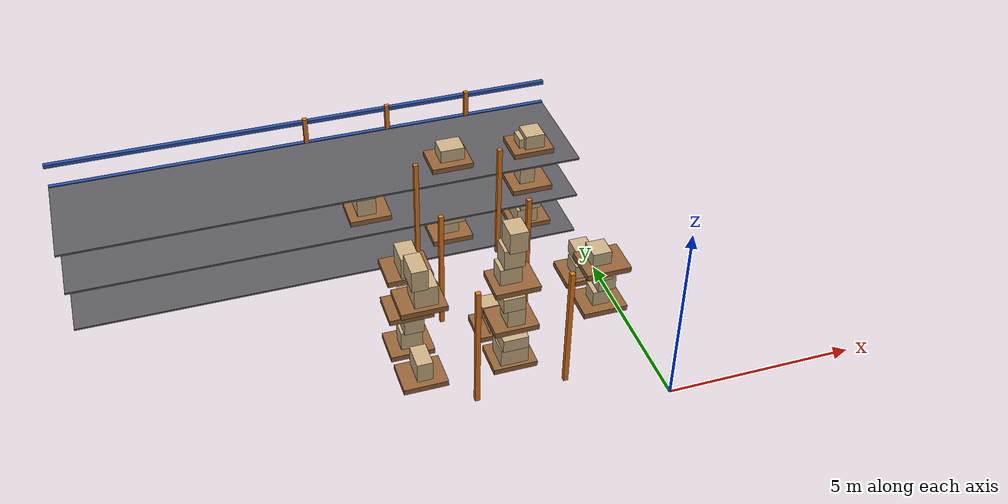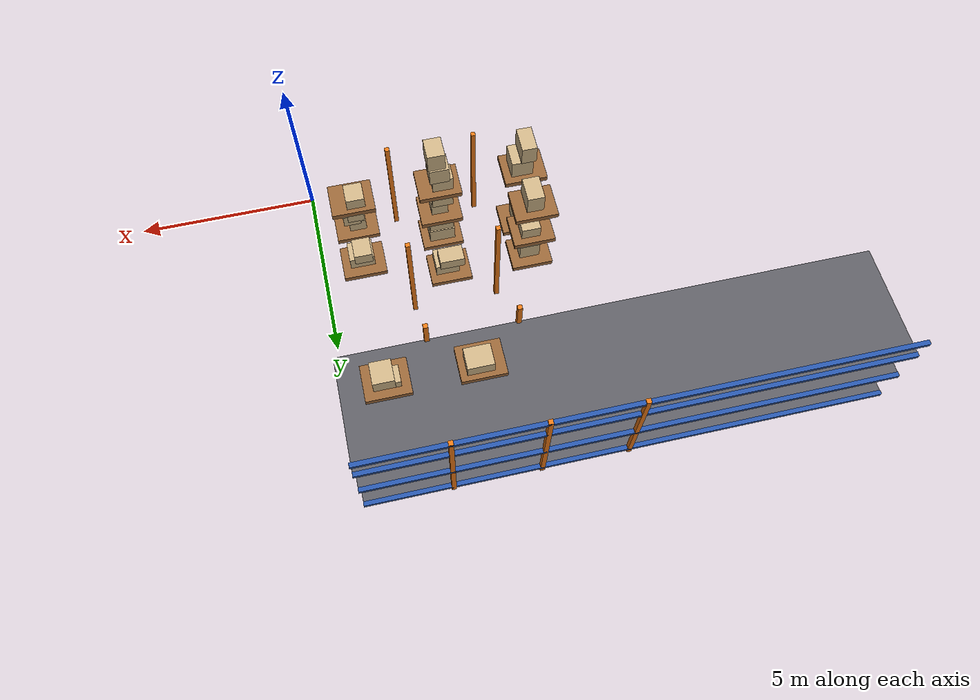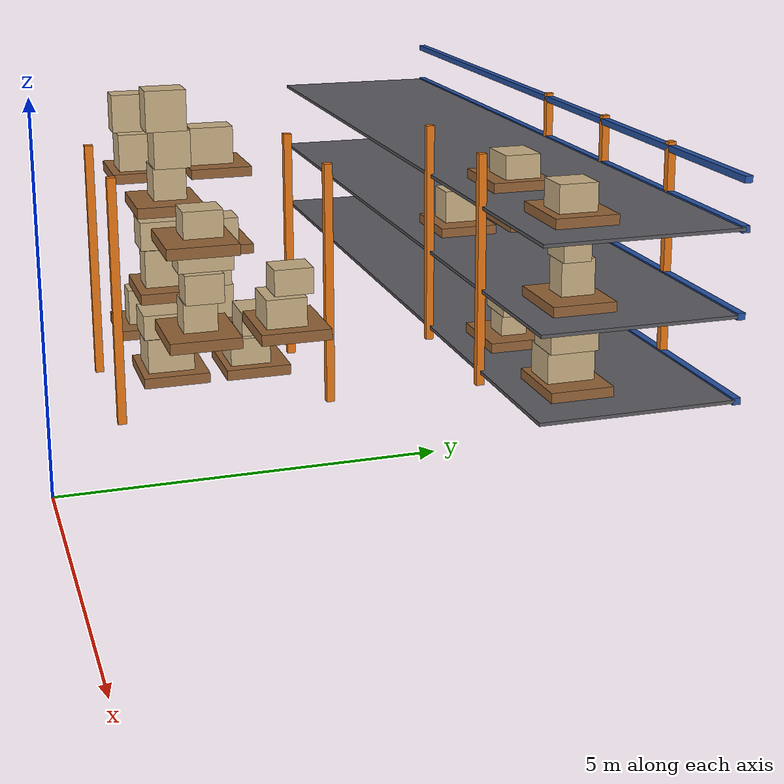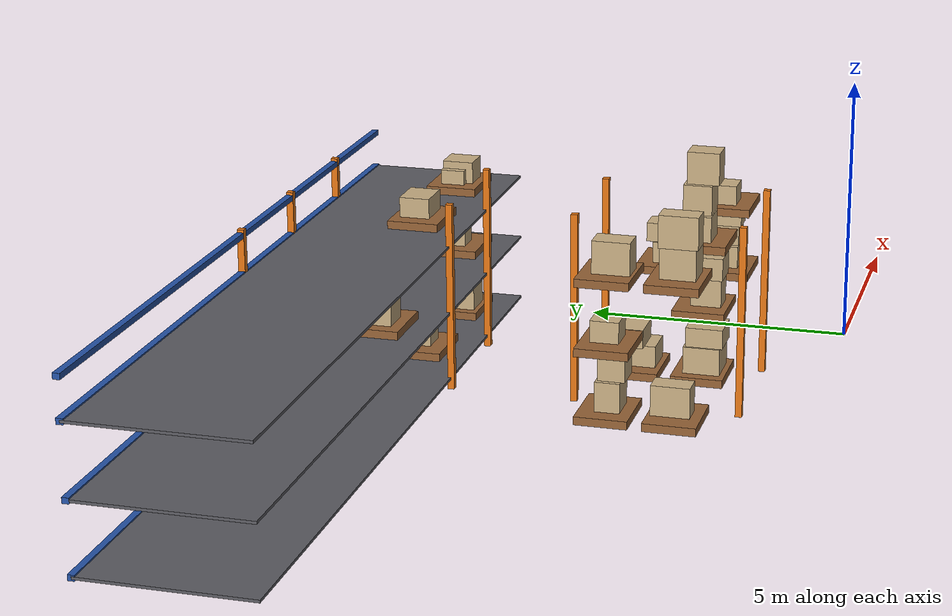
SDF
<sdf version="1.7">
 <world name="default">
  <model name="warehouse_racks">
   <static>1</static>
   <link name="r20_u4_0">
    <pose>-4.66667 1.2 1.75 0 0 0</pose>
    <collision name="c"><geometry><box><size>0.12 0.12 3.5</size></box></geometry></collision>
    <visual name="v">
     <geometry><box><size>0.12 0.12 3.5</size></box></geometry>
     <material>
      <ambient>0.910 0.471 0.086 1</ambient>
      <diffuse>0.910 0.471 0.086 1</diffuse>
      <specular>0.1 0.1 0.1 1</specular>
     </material>
    </visual>
   </link>
   <link name="r20_u4_1">
    <pose>-4.66667 4.2 1.75 0 0 0</pose>
    <collision name="c"><geometry><box><size>0.12 0.12 3.5</size></box></geometry></collision>
    <visual name="v">
     <geometry><box><size>0.12 0.12 3.5</size></box></geometry>
     <material>
      <ambient>0.910 0.471 0.086 1</ambient>
      <diffuse>0.910 0.471 0.086 1</diffuse>
      <specular>0.1 0.1 0.1 1</specular>
     </material>
    </visual>
   </link>
   <link name="r20_u5_0">
    <pose>-2.33333 1.2 1.75 0 0 0</pose>
    <collision name="c"><geometry><box><size>0.12 0.12 3.5</size></box></geometry></collision>
    <visual name="v">
     <geometry><box><size>0.12 0.12 3.5</size></box></geometry>
     <material>
      <ambient>0.910 0.471 0.086 1</ambient>
      <diffuse>0.910 0.471 0.086 1</diffuse>
      <specular>0.1 0.1 0.1 1</specular>
     </material>
    </visual>
   </link>
   <link name="r20_u5_1">
    <pose>-2.33333 4.2 1.75 0 0 0</pose>
    <collision name="c"><geometry><box><size>0.12 0.12 3.5</size></box></geometry></collision>
    <visual name="v">
     <geometry><box><size>0.12 0.12 3.5</size></box></geometry>
     <material>
      <ambient>0.910 0.471 0.086 1</ambient>
      <diffuse>0.910 0.471 0.086 1</diffuse>
      <specular>0.1 0.1 0.1 1</specular>
     </material>
    </visual>
   </link>
   <link name="r30_u3_1">
    <pose>-7 9.5 1.75 0 0 0</pose>
    <collision name="c"><geometry><box><size>0.12 0.12 3.5</size></box></geometry></collision>
    <visual name="v">
     <geometry><box><size>0.12 0.12 3.5</size></box></geometry>
     <material>
      <ambient>0.910 0.471 0.086 1</ambient>
      <diffuse>0.910 0.471 0.086 1</diffuse>
      <specular>0.1 0.1 0.1 1</specular>
     </material>
    </visual>
   </link>
   <link name="r30_u4_0">
    <pose>-4.66667 6.5 1.75 0 0 0</pose>
    <collision name="c"><geometry><box><size>0.12 0.12 3.5</size></box></geometry></collision>
    <visual name="v">
     <geometry><box><size>0.12 0.12 3.5</size></box></geometry>
     <material>
      <ambient>0.910 0.471 0.086 1</ambient>
      <diffuse>0.910 0.471 0.086 1</diffuse>
      <specular>0.1 0.1 0.1 1</specular>
     </material>
    </visual>
   </link>
   <link name="r30_u4_1">
    <pose>-4.66667 9.5 1.75 0 0 0</pose>
    <collision name="c"><geometry><box><size>0.12 0.12 3.5</size></box></geometry></collision>
    <visual name="v">
     <geometry><box><size>0.12 0.12 3.5</size></box></geometry>
     <material>
      <ambient>0.910 0.471 0.086 1</ambient>
      <diffuse>0.910 0.471 0.086 1</diffuse>
      <specular>0.1 0.1 0.1 1</specular>
     </material>
    </visual>
   </link>
   <link name="r30_u5_0">
    <pose>-2.33333 6.5 1.75 0 0 0</pose>
    <collision name="c"><geometry><box><size>0.12 0.12 3.5</size></box></geometry></collision>
    <visual name="v">
     <geometry><box><size>0.12 0.12 3.5</size></box></geometry>
     <material>
      <ambient>0.910 0.471 0.086 1</ambient>
      <diffuse>0.910 0.471 0.086 1</diffuse>
      <specular>0.1 0.1 0.1 1</specular>
     </material>
    </visual>
   </link>
   <link name="r30_u5_1">
    <pose>-2.33333 9.5 1.75 0 0 0</pose>
    <collision name="c"><geometry><box><size>0.12 0.12 3.5</size></box></geometry></collision>
    <visual name="v">
     <geometry><box><size>0.12 0.12 3.5</size></box></geometry>
     <material>
      <ambient>0.910 0.471 0.086 1</ambient>
      <diffuse>0.910 0.471 0.086 1</diffuse>
      <specular>0.1 0.1 0.1 1</specular>
     </material>
    </visual>
   </link>
   <link name="r30_b0_1">
    <pose>-7 9.5 0.2 0 0 0</pose>
    <collision name="c"><geometry><box><size>14 0.12 0.1</size></box></geometry></collision>
    <visual name="v">
     <geometry><box><size>14 0.12 0.1</size></box></geometry>
     <material>
      <ambient>0.149 0.329 0.659 1</ambient>
      <diffuse>0.149 0.329 0.659 1</diffuse>
      <specular>0.1 0.1 0.1 1</specular>
     </material>
    </visual>
   </link>
   <link name="r30_b1_1">
    <pose>-7 9.5 1.45 0 0 0</pose>
    <collision name="c"><geometry><box><size>14 0.12 0.1</size></box></geometry></collision>
    <visual name="v">
     <geometry><box><size>14 0.12 0.1</size></box></geometry>
     <material>
      <ambient>0.149 0.329 0.659 1</ambient>
      <diffuse>0.149 0.329 0.659 1</diffuse>
      <specular>0.1 0.1 0.1 1</specular>
     </material>
    </visual>
   </link>
   <link name="r30_b2_1">
    <pose>-7 9.5 2.7 0 0 0</pose>
    <collision name="c"><geometry><box><size>14 0.12 0.1</size></box></geometry></collision>
    <visual name="v">
     <geometry><box><size>14 0.12 0.1</size></box></geometry>
     <material>
      <ambient>0.149 0.329 0.659 1</ambient>
      <diffuse>0.149 0.329 0.659 1</diffuse>
      <specular>0.1 0.1 0.1 1</specular>
     </material>
    </visual>
   </link>
   <link name="r30_b3_1">
    <pose>-7 9.5 3.4 0 0 0</pose>
    <collision name="c"><geometry><box><size>14 0.12 0.1</size></box></geometry></collision>
    <visual name="v">
     <geometry><box><size>14 0.12 0.1</size></box></geometry>
     <material>
      <ambient>0.149 0.329 0.659 1</ambient>
      <diffuse>0.149 0.329 0.659 1</diffuse>
      <specular>0.1 0.1 0.1 1</specular>
     </material>
    </visual>
   </link>
   <link name="r30_d0">
    <pose>-7 8 0.2 0 0 0</pose>
    <collision name="c"><geometry><box><size>14 3 0.05</size></box></geometry></collision>
    <visual name="v">
     <geometry><box><size>14 3 0.05</size></box></geometry>
     <material>
      <ambient>0.361 0.361 0.384 1</ambient>
      <diffuse>0.361 0.361 0.384 1</diffuse>
      <specular>0.1 0.1 0.1 1</specular>
     </material>
    </visual>
   </link>
   <link name="r30_d1">
    <pose>-7 8 1.45 0 0 0</pose>
    <collision name="c"><geometry><box><size>14 3 0.05</size></box></geometry></collision>
    <visual name="v">
     <geometry><box><size>14 3 0.05</size></box></geometry>
     <material>
      <ambient>0.361 0.361 0.384 1</ambient>
      <diffuse>0.361 0.361 0.384 1</diffuse>
      <specular>0.1 0.1 0.1 1</specular>
     </material>
    </visual>
   </link>
   <link name="r30_d2">
    <pose>-7 8 2.7 0 0 0</pose>
    <collision name="c"><geometry><box><size>14 3 0.05</size></box></geometry></collision>
    <visual name="v">
     <geometry><box><size>14 3 0.05</size></box></geometry>
     <material>
      <ambient>0.361 0.361 0.384 1</ambient>
      <diffuse>0.361 0.361 0.384 1</diffuse>
      <specular>0.1 0.1 0.1 1</specular>
     </material>
    </visual>
   </link>
  </model>
  <model name="warehouse_loads">
   <static>1</static>
   <link name="r20L0_3_0_p">
    <pose>-5.83333 2.1 0.325 0 0 0</pose>
    <collision name="c"><geometry><box><size>1.15 0.95 0.15</size></box></geometry></collision>
    <visual name="v">
     <geometry><box><size>1.15 0.95 0.15</size></box></geometry>
     <material>
      <ambient>0.588 0.392 0.216 1</ambient>
      <diffuse>0.588 0.392 0.216 1</diffuse>
      <specular>0.1 0.1 0.1 1</specular>
     </material>
    </visual>
   </link>
   <link name="r20L0_3_0_c0">
    <pose>-5.8065 2.16501 0.676502 0 0 0</pose>
    <collision name="c"><geometry><box><size>0.412049 0.696701 0.553005</size></box></geometry></collision>
    <visual name="v">
     <geometry><box><size>0.412049 0.696701 0.553005</size></box></geometry>
     <material>
      <ambient>0.792 0.690 0.518 1</ambient>
      <diffuse>0.792 0.690 0.518 1</diffuse>
      <specular>0.1 0.1 0.1 1</specular>
     </material>
    </visual>
   </link>
   <link name="r20L0_3_1_p">
    <pose>-5.83333 3.3 0.325 0 0 0</pose>
    <collision name="c"><geometry><box><size>1.15 0.95 0.15</size></box></geometry></collision>
    <visual name="v">
     <geometry><box><size>1.15 0.95 0.15</size></box></geometry>
     <material>
      <ambient>0.588 0.392 0.216 1</ambient>
      <diffuse>0.588 0.392 0.216 1</diffuse>
      <specular>0.1 0.1 0.1 1</specular>
     </material>
    </visual>
   </link>
   <link name="r20L0_3_1_c0">
    <pose>-5.80407 3.25889 0.673996 0 0 0</pose>
    <collision name="c"><geometry><box><size>0.56699 0.446429 0.547992</size></box></geometry></collision>
    <visual name="v">
     <geometry><box><size>0.56699 0.446429 0.547992</size></box></geometry>
     <material>
      <ambient>0.792 0.690 0.518 1</ambient>
      <diffuse>0.792 0.690 0.518 1</diffuse>
      <specular>0.1 0.1 0.1 1</specular>
     </material>
    </visual>
   </link>
   <link name="r20L0_3_1_c1">
    <pose>-5.74731 3.20968 1.16685 0 0 0</pose>
    <collision name="c"><geometry><box><size>0.517781 0.491406 0.437725</size></box></geometry></collision>
    <visual name="v">
     <geometry><box><size>0.517781 0.491406 0.437725</size></box></geometry>
     <material>
      <ambient>0.792 0.690 0.518 1</ambient>
      <diffuse>0.792 0.690 0.518 1</diffuse>
      <specular>0.1 0.1 0.1 1</specular>
     </material>
    </visual>
   </link>
   <link name="r20L0_4_0_p">
    <pose>-3.5 2.1 0.325 0 0 0</pose>
    <collision name="c"><geometry><box><size>1.15 0.95 0.15</size></box></geometry></collision>
    <visual name="v">
     <geometry><box><size>1.15 0.95 0.15</size></box></geometry>
     <material>
      <ambient>0.588 0.392 0.216 1</ambient>
      <diffuse>0.588 0.392 0.216 1</diffuse>
      <specular>0.1 0.1 0.1 1</specular>
     </material>
    </visual>
   </link>
   <link name="r20L0_4_0_c0">
    <pose>-3.50478 2.05753 0.650251 0 0 0</pose>
    <collision name="c"><geometry><box><size>0.718617 0.669233 0.500502</size></box></geometry></collision>
    <visual name="v">
     <geometry><box><size>0.718617 0.669233 0.500502</size></box></geometry>
     <material>
      <ambient>0.792 0.690 0.518 1</ambient>
      <diffuse>0.792 0.690 0.518 1</diffuse>
      <specular>0.1 0.1 0.1 1</specular>
     </material>
    </visual>
   </link>
   <link name="r20L0_4_0_c1">
    <pose>-3.49628 2.01966 1.07941 0 0 0</pose>
    <collision name="c"><geometry><box><size>0.660979 0.67617 0.357812</size></box></geometry></collision>
    <visual name="v">
     <geometry><box><size>0.660979 0.67617 0.357812</size></box></geometry>
     <material>
      <ambient>0.792 0.690 0.518 1</ambient>
      <diffuse>0.792 0.690 0.518 1</diffuse>
      <specular>0.1 0.1 0.1 1</specular>
     </material>
    </visual>
   </link>
   <link name="r20L0_4_1_p">
    <pose>-3.5 3.3 0.325 0 0 0</pose>
    <collision name="c"><geometry><box><size>1.15 0.95 0.15</size></box></geometry></collision>
    <visual name="v">
     <geometry><box><size>1.15 0.95 0.15</size></box></geometry>
     <material>
      <ambient>0.588 0.392 0.216 1</ambient>
      <diffuse>0.588 0.392 0.216 1</diffuse>
      <specular>0.1 0.1 0.1 1</specular>
     </material>
    </visual>
   </link>
   <link name="r20L0_4_1_c0">
    <pose>-3.42755 3.21818 0.602072 0 0 0</pose>
    <collision name="c"><geometry><box><size>0.646631 0.588258 0.404144</size></box></geometry></collision>
    <visual name="v">
     <geometry><box><size>0.646631 0.588258 0.404144</size></box></geometry>
     <material>
      <ambient>0.792 0.690 0.518 1</ambient>
      <diffuse>0.792 0.690 0.518 1</diffuse>
      <specular>0.1 0.1 0.1 1</specular>
     </material>
    </visual>
   </link>
   <link name="r20L0_4_1_c1">
    <pose>-3.55959 3.35244 0.979306 0 0 0</pose>
    <collision name="c"><geometry><box><size>0.686934 0.45963 0.350325</size></box></geometry></collision>
    <visual name="v">
     <geometry><box><size>0.686934 0.45963 0.350325</size></box></geometry>
     <material>
      <ambient>0.792 0.690 0.518 1</ambient>
      <diffuse>0.792 0.690 0.518 1</diffuse>
      <specular>0.1 0.1 0.1 1</specular>
     </material>
    </visual>
   </link>
   <link name="r20L1_3_1_p">
    <pose>-5.83333 3.3 1.575 0 0 0</pose>
    <collision name="c"><geometry><box><size>1.15 0.95 0.15</size></box></geometry></collision>
    <visual name="v">
     <geometry><box><size>1.15 0.95 0.15</size></box></geometry>
     <material>
      <ambient>0.588 0.392 0.216 1</ambient>
      <diffuse>0.588 0.392 0.216 1</diffuse>
      <specular>0.1 0.1 0.1 1</specular>
     </material>
    </visual>
   </link>
   <link name="r20L1_3_1_c0">
    <pose>-5.76471 3.33242 1.84442 0 0 0</pose>
    <collision name="c"><geometry><box><size>0.52197 0.514331 0.388832</size></box></geometry></collision>
    <visual name="v">
     <geometry><box><size>0.52197 0.514331 0.388832</size></box></geometry>
     <material>
      <ambient>0.792 0.690 0.518 1</ambient>
      <diffuse>0.792 0.690 0.518 1</diffuse>
      <specular>0.1 0.1 0.1 1</specular>
     </material>
    </visual>
   </link>
   <link name="r20L1_4_0_p">
    <pose>-3.5 2.1 1.575 0 0 0</pose>
    <collision name="c"><geometry><box><size>1.15 0.95 0.15</size></box></geometry></collision>
    <visual name="v">
     <geometry><box><size>1.15 0.95 0.15</size></box></geometry>
     <material>
      <ambient>0.588 0.392 0.216 1</ambient>
      <diffuse>0.588 0.392 0.216 1</diffuse>
      <specular>0.1 0.1 0.1 1</specular>
     </material>
    </visual>
   </link>
   <link name="r20L1_4_0_c0">
    <pose>-3.48417 2.02521 1.92168 0 0 0</pose>
    <collision name="c"><geometry><box><size>0.459343 0.553579 0.543359</size></box></geometry></collision>
    <visual name="v">
     <geometry><box><size>0.459343 0.553579 0.543359</size></box></geometry>
     <material>
      <ambient>0.792 0.690 0.518 1</ambient>
      <diffuse>0.792 0.690 0.518 1</diffuse>
      <specular>0.1 0.1 0.1 1</specular>
     </material>
    </visual>
   </link>
   <link name="r20L1_4_0_c1">
    <pose>-3.56169 2.0603 2.3981 0 0 0</pose>
    <collision name="c"><geometry><box><size>0.561706 0.709794 0.409485</size></box></geometry></collision>
    <visual name="v">
     <geometry><box><size>0.561706 0.709794 0.409485</size></box></geometry>
     <material>
      <ambient>0.792 0.690 0.518 1</ambient>
      <diffuse>0.792 0.690 0.518 1</diffuse>
      <specular>0.1 0.1 0.1 1</specular>
     </material>
    </visual>
   </link>
   <link name="r20L1_5_0_p">
    <pose>-1.16667 2.1 1.575 0 0 0</pose>
    <collision name="c"><geometry><box><size>1.15 0.95 0.15</size></box></geometry></collision>
    <visual name="v">
     <geometry><box><size>1.15 0.95 0.15</size></box></geometry>
     <material>
      <ambient>0.588 0.392 0.216 1</ambient>
      <diffuse>0.588 0.392 0.216 1</diffuse>
      <specular>0.1 0.1 0.1 1</specular>
     </material>
    </visual>
   </link>
   <link name="r20L1_5_0_c0">
    <pose>-1.20135 2.10444 1.85595 0 0 0</pose>
    <collision name="c"><geometry><box><size>0.454108 0.454595 0.411895</size></box></geometry></collision>
    <visual name="v">
     <geometry><box><size>0.454108 0.454595 0.411895</size></box></geometry>
     <material>
      <ambient>0.792 0.690 0.518 1</ambient>
      <diffuse>0.792 0.690 0.518 1</diffuse>
      <specular>0.1 0.1 0.1 1</specular>
     </material>
    </visual>
   </link>
   <link name="r20L1_5_0_c1">
    <pose>-1.07164 2.14575 2.26055 0 0 0</pose>
    <collision name="c"><geometry><box><size>0.456324 0.514826 0.397318</size></box></geometry></collision>
    <visual name="v">
     <geometry><box><size>0.456324 0.514826 0.397318</size></box></geometry>
     <material>
      <ambient>0.792 0.690 0.518 1</ambient>
      <diffuse>0.792 0.690 0.518 1</diffuse>
      <specular>0.1 0.1 0.1 1</specular>
     </material>
    </visual>
   </link>
   <link name="r20L1_5_0_c2">
    <pose>-1.18982 2.19677 2.64692 0 0 0</pose>
    <collision name="c"><geometry><box><size>0.435632 0.736835 0.375409</size></box></geometry></collision>
    <visual name="v">
     <geometry><box><size>0.435632 0.736835 0.375409</size></box></geometry>
     <material>
      <ambient>0.792 0.690 0.518 1</ambient>
      <diffuse>0.792 0.690 0.518 1</diffuse>
      <specular>0.1 0.1 0.1 1</specular>
     </material>
    </visual>
   </link>
   <link name="r20L1_5_1_p">
    <pose>-1.16667 3.3 1.575 0 0 0</pose>
    <collision name="c"><geometry><box><size>1.15 0.95 0.15</size></box></geometry></collision>
    <visual name="v">
     <geometry><box><size>1.15 0.95 0.15</size></box></geometry>
     <material>
      <ambient>0.588 0.392 0.216 1</ambient>
      <diffuse>0.588 0.392 0.216 1</diffuse>
      <specular>0.1 0.1 0.1 1</specular>
     </material>
    </visual>
   </link>
   <link name="r20L1_5_1_c0">
    <pose>-1.13907 3.22137 1.84952 0 0 0</pose>
    <collision name="c"><geometry><box><size>0.656652 0.552223 0.399048</size></box></geometry></collision>
    <visual name="v">
     <geometry><box><size>0.656652 0.552223 0.399048</size></box></geometry>
     <material>
      <ambient>0.792 0.690 0.518 1</ambient>
      <diffuse>0.792 0.690 0.518 1</diffuse>
      <specular>0.1 0.1 0.1 1</specular>
     </material>
    </visual>
   </link>
   <link name="r20L1_5_1_c1">
    <pose>-1.18686 3.3582 2.22829 0 0 0</pose>
    <collision name="c"><geometry><box><size>0.472255 0.535919 0.358483</size></box></geometry></collision>
    <visual name="v">
     <geometry><box><size>0.472255 0.535919 0.358483</size></box></geometry>
     <material>
      <ambient>0.792 0.690 0.518 1</ambient>
      <diffuse>0.792 0.690 0.518 1</diffuse>
      <specular>0.1 0.1 0.1 1</specular>
     </material>
    </visual>
   </link>
   <link name="r20L2_3_0_p">
    <pose>-5.83333 2.1 2.825 0 0 0</pose>
    <collision name="c"><geometry><box><size>1.15 0.95 0.15</size></box></geometry></collision>
    <visual name="v">
     <geometry><box><size>1.15 0.95 0.15</size></box></geometry>
     <material>
      <ambient>0.588 0.392 0.216 1</ambient>
      <diffuse>0.588 0.392 0.216 1</diffuse>
      <specular>0.1 0.1 0.1 1</specular>
     </material>
    </visual>
   </link>
   <link name="r20L2_3_0_c0">
    <pose>-5.75443 2.06561 3.18412 0 0 0</pose>
    <collision name="c"><geometry><box><size>0.581388 0.631386 0.568248</size></box></geometry></collision>
    <visual name="v">
     <geometry><box><size>0.581388 0.631386 0.568248</size></box></geometry>
     <material>
      <ambient>0.792 0.690 0.518 1</ambient>
      <diffuse>0.792 0.690 0.518 1</diffuse>
      <specular>0.1 0.1 0.1 1</specular>
     </material>
    </visual>
   </link>
   <link name="r20L2_3_0_c1">
    <pose>-5.91206 2.05024 3.75677 0 0 0</pose>
    <collision name="c"><geometry><box><size>0.403721 0.691155 0.577048</size></box></geometry></collision>
    <visual name="v">
     <geometry><box><size>0.403721 0.691155 0.577048</size></box></geometry>
     <material>
      <ambient>0.792 0.690 0.518 1</ambient>
      <diffuse>0.792 0.690 0.518 1</diffuse>
      <specular>0.1 0.1 0.1 1</specular>
     </material>
    </visual>
   </link>
   <link name="r20L2_3_1_p">
    <pose>-5.83333 3.3 2.825 0 0 0</pose>
    <collision name="c"><geometry><box><size>1.15 0.95 0.15</size></box></geometry></collision>
    <visual name="v">
     <geometry><box><size>1.15 0.95 0.15</size></box></geometry>
     <material>
      <ambient>0.588 0.392 0.216 1</ambient>
      <diffuse>0.588 0.392 0.216 1</diffuse>
      <specular>0.1 0.1 0.1 1</specular>
     </material>
    </visual>
   </link>
   <link name="r20L2_3_1_c0">
    <pose>-5.82949 3.22022 3.19257 0 0 0</pose>
    <collision name="c"><geometry><box><size>0.456295 0.673627 0.585147</size></box></geometry></collision>
    <visual name="v">
     <geometry><box><size>0.456295 0.673627 0.585147</size></box></geometry>
     <material>
      <ambient>0.792 0.690 0.518 1</ambient>
      <diffuse>0.792 0.690 0.518 1</diffuse>
      <specular>0.1 0.1 0.1 1</specular>
     </material>
    </visual>
   </link>
   <link name="r20L2_4_0_p">
    <pose>-3.5 2.1 2.825 0 0 0</pose>
    <collision name="c"><geometry><box><size>1.15 0.95 0.15</size></box></geometry></collision>
    <visual name="v">
     <geometry><box><size>1.15 0.95 0.15</size></box></geometry>
     <material>
      <ambient>0.588 0.392 0.216 1</ambient>
      <diffuse>0.588 0.392 0.216 1</diffuse>
      <specular>0.1 0.1 0.1 1</specular>
     </material>
    </visual>
   </link>
   <link name="r20L2_4_0_c0">
    <pose>-3.59678 2.15851 3.13447 0 0 0</pose>
    <collision name="c"><geometry><box><size>0.559875 0.471744 0.468934</size></box></geometry></collision>
    <visual name="v">
     <geometry><box><size>0.559875 0.471744 0.468934</size></box></geometry>
     <material>
      <ambient>0.792 0.690 0.518 1</ambient>
      <diffuse>0.792 0.690 0.518 1</diffuse>
      <specular>0.1 0.1 0.1 1</specular>
     </material>
    </visual>
   </link>
   <link name="r20L2_4_0_c1">
    <pose>-3.50862 2.19806 3.6367 0 0 0</pose>
    <collision name="c"><geometry><box><size>0.52947 0.519998 0.535527</size></box></geometry></collision>
    <visual name="v">
     <geometry><box><size>0.52947 0.519998 0.535527</size></box></geometry>
     <material>
      <ambient>0.792 0.690 0.518 1</ambient>
      <diffuse>0.792 0.690 0.518 1</diffuse>
      <specular>0.1 0.1 0.1 1</specular>
     </material>
    </visual>
   </link>
   <link name="r20L2_4_0_c2">
    <pose>-3.45418 2.1228 4.19605 0 0 0</pose>
    <collision name="c"><geometry><box><size>0.464331 0.579827 0.583173</size></box></geometry></collision>
    <visual name="v">
     <geometry><box><size>0.464331 0.579827 0.583173</size></box></geometry>
     <material>
      <ambient>0.792 0.690 0.518 1</ambient>
      <diffuse>0.792 0.690 0.518 1</diffuse>
      <specular>0.1 0.1 0.1 1</specular>
     </material>
    </visual>
   </link>
   <link name="r20L2_5_0_p">
    <pose>-1.16667 2.1 2.825 0 0 0</pose>
    <collision name="c"><geometry><box><size>1.15 0.95 0.15</size></box></geometry></collision>
    <visual name="v">
     <geometry><box><size>1.15 0.95 0.15</size></box></geometry>
     <material>
      <ambient>0.588 0.392 0.216 1</ambient>
      <diffuse>0.588 0.392 0.216 1</diffuse>
      <specular>0.1 0.1 0.1 1</specular>
     </material>
    </visual>
   </link>
   <link name="r20L2_5_0_c0">
    <pose>-1.25163 2.18309 3.08269 0 0 0</pose>
    <collision name="c"><geometry><box><size>0.48836 0.533643 0.365376</size></box></geometry></collision>
    <visual name="v">
     <geometry><box><size>0.48836 0.533643 0.365376</size></box></geometry>
     <material>
      <ambient>0.792 0.690 0.518 1</ambient>
      <diffuse>0.792 0.690 0.518 1</diffuse>
      <specular>0.1 0.1 0.1 1</specular>
     </material>
    </visual>
   </link>
   <link name="r30L0_3_1_p">
    <pose>-5.83333 8.6 0.325 0 0 0</pose>
    <collision name="c"><geometry><box><size>1.15 0.95 0.15</size></box></geometry></collision>
    <visual name="v">
     <geometry><box><size>1.15 0.95 0.15</size></box></geometry>
     <material>
      <ambient>0.588 0.392 0.216 1</ambient>
      <diffuse>0.588 0.392 0.216 1</diffuse>
      <specular>0.1 0.1 0.1 1</specular>
     </material>
    </visual>
   </link>
   <link name="r30L0_3_1_c0">
    <pose>-5.82091 8.5516 0.673318 0 0 0</pose>
    <collision name="c"><geometry><box><size>0.529104 0.687914 0.546635</size></box></geometry></collision>
    <visual name="v">
     <geometry><box><size>0.529104 0.687914 0.546635</size></box></geometry>
     <material>
      <ambient>0.792 0.690 0.518 1</ambient>
      <diffuse>0.792 0.690 0.518 1</diffuse>
      <specular>0.1 0.1 0.1 1</specular>
     </material>
    </visual>
   </link>
   <link name="r30L0_4_0_p">
    <pose>-3.5 7.4 0.325 0 0 0</pose>
    <collision name="c"><geometry><box><size>1.15 0.95 0.15</size></box></geometry></collision>
    <visual name="v">
     <geometry><box><size>1.15 0.95 0.15</size></box></geometry>
     <material>
      <ambient>0.588 0.392 0.216 1</ambient>
      <diffuse>0.588 0.392 0.216 1</diffuse>
      <specular>0.1 0.1 0.1 1</specular>
     </material>
    </visual>
   </link>
   <link name="r30L0_4_0_c0">
    <pose>-3.48673 7.41566 0.577549 0 0 0</pose>
    <collision name="c"><geometry><box><size>0.464672 0.411984 0.355098</size></box></geometry></collision>
    <visual name="v">
     <geometry><box><size>0.464672 0.411984 0.355098</size></box></geometry>
     <material>
      <ambient>0.792 0.690 0.518 1</ambient>
      <diffuse>0.792 0.690 0.518 1</diffuse>
      <specular>0.1 0.1 0.1 1</specular>
     </material>
    </visual>
   </link>
   <link name="r30L0_4_0_c1">
    <pose>-3.43505 7.45476 0.995367 0 0 0</pose>
    <collision name="c"><geometry><box><size>0.719841 0.574218 0.480539</size></box></geometry></collision>
    <visual name="v">
     <geometry><box><size>0.719841 0.574218 0.480539</size></box></geometry>
     <material>
      <ambient>0.792 0.690 0.518 1</ambient>
      <diffuse>0.792 0.690 0.518 1</diffuse>
      <specular>0.1 0.1 0.1 1</specular>
     </material>
    </visual>
   </link>
   <link name="r30L0_5_0_p">
    <pose>-1.16667 7.4 0.325 0 0 0</pose>
    <collision name="c"><geometry><box><size>1.15 0.95 0.15</size></box></geometry></collision>
    <visual name="v">
     <geometry><box><size>1.15 0.95 0.15</size></box></geometry>
     <material>
      <ambient>0.588 0.392 0.216 1</ambient>
      <diffuse>0.588 0.392 0.216 1</diffuse>
      <specular>0.1 0.1 0.1 1</specular>
     </material>
    </visual>
   </link>
   <link name="r30L0_5_0_c0">
    <pose>-1.26384 7.37743 0.630809 0 0 0</pose>
    <collision name="c"><geometry><box><size>0.601362 0.72152 0.461618</size></box></geometry></collision>
    <visual name="v">
     <geometry><box><size>0.601362 0.72152 0.461618</size></box></geometry>
     <material>
      <ambient>0.792 0.690 0.518 1</ambient>
      <diffuse>0.792 0.690 0.518 1</diffuse>
      <specular>0.1 0.1 0.1 1</specular>
     </material>
    </visual>
   </link>
   <link name="r30L0_5_0_c1">
    <pose>-1.17158 7.38248 1.15922 0 0 0</pose>
    <collision name="c"><geometry><box><size>0.60719 0.728202 0.595196</size></box></geometry></collision>
    <visual name="v">
     <geometry><box><size>0.60719 0.728202 0.595196</size></box></geometry>
     <material>
      <ambient>0.792 0.690 0.518 1</ambient>
      <diffuse>0.792 0.690 0.518 1</diffuse>
      <specular>0.1 0.1 0.1 1</specular>
     </material>
    </visual>
   </link>
   <link name="r30L1_3_0_p">
    <pose>-5.83333 7.4 1.575 0 0 0</pose>
    <collision name="c"><geometry><box><size>1.15 0.95 0.15</size></box></geometry></collision>
    <visual name="v">
     <geometry><box><size>1.15 0.95 0.15</size></box></geometry>
     <material>
      <ambient>0.588 0.392 0.216 1</ambient>
      <diffuse>0.588 0.392 0.216 1</diffuse>
      <specular>0.1 0.1 0.1 1</specular>
     </material>
    </visual>
   </link>
   <link name="r30L1_3_0_c0">
    <pose>-5.90437 7.45187 1.91186 0 0 0</pose>
    <collision name="c"><geometry><box><size>0.528056 0.661535 0.523711</size></box></geometry></collision>
    <visual name="v">
     <geometry><box><size>0.528056 0.661535 0.523711</size></box></geometry>
     <material>
      <ambient>0.792 0.690 0.518 1</ambient>
      <diffuse>0.792 0.690 0.518 1</diffuse>
      <specular>0.1 0.1 0.1 1</specular>
     </material>
    </visual>
   </link>
   <link name="r30L1_3_1_p">
    <pose>-5.83333 8.6 1.575 0 0 0</pose>
    <collision name="c"><geometry><box><size>1.15 0.95 0.15</size></box></geometry></collision>
    <visual name="v">
     <geometry><box><size>1.15 0.95 0.15</size></box></geometry>
     <material>
      <ambient>0.588 0.392 0.216 1</ambient>
      <diffuse>0.588 0.392 0.216 1</diffuse>
      <specular>0.1 0.1 0.1 1</specular>
     </material>
    </visual>
   </link>
   <link name="r30L1_3_1_c0">
    <pose>-5.74686 8.55081 1.88257 0 0 0</pose>
    <collision name="c"><geometry><box><size>0.620018 0.648232 0.465145</size></box></geometry></collision>
    <visual name="v">
     <geometry><box><size>0.620018 0.648232 0.465145</size></box></geometry>
     <material>
      <ambient>0.792 0.690 0.518 1</ambient>
      <diffuse>0.792 0.690 0.518 1</diffuse>
      <specular>0.1 0.1 0.1 1</specular>
     </material>
    </visual>
   </link>
   <link name="r30L1_3_1_c1">
    <pose>-5.93039 8.63014 2.29157 0 0 0</pose>
    <collision name="c"><geometry><box><size>0.73751 0.651024 0.35285</size></box></geometry></collision>
    <visual name="v">
     <geometry><box><size>0.73751 0.651024 0.35285</size></box></geometry>
     <material>
      <ambient>0.792 0.690 0.518 1</ambient>
      <diffuse>0.792 0.690 0.518 1</diffuse>
      <specular>0.1 0.1 0.1 1</specular>
     </material>
    </visual>
   </link>
   <link name="r30L1_5_0_p">
    <pose>-1.16667 7.4 1.575 0 0 0</pose>
    <collision name="c"><geometry><box><size>1.15 0.95 0.15</size></box></geometry></collision>
    <visual name="v">
     <geometry><box><size>1.15 0.95 0.15</size></box></geometry>
     <material>
      <ambient>0.588 0.392 0.216 1</ambient>
      <diffuse>0.588 0.392 0.216 1</diffuse>
      <specular>0.1 0.1 0.1 1</specular>
     </material>
    </visual>
   </link>
   <link name="r30L1_5_0_c0">
    <pose>-1.23347 7.47219 1.91618 0 0 0</pose>
    <collision name="c"><geometry><box><size>0.427888 0.508872 0.53236</size></box></geometry></collision>
    <visual name="v">
     <geometry><box><size>0.427888 0.508872 0.53236</size></box></geometry>
     <material>
      <ambient>0.792 0.690 0.518 1</ambient>
      <diffuse>0.792 0.690 0.518 1</diffuse>
      <specular>0.1 0.1 0.1 1</specular>
     </material>
    </visual>
   </link>
   <link name="r30L1_5_0_c1">
    <pose>-1.15167 7.38774 2.40331 0 0 0</pose>
    <collision name="c"><geometry><box><size>0.570215 0.420923 0.441891</size></box></geometry></collision>
    <visual name="v">
     <geometry><box><size>0.570215 0.420923 0.441891</size></box></geometry>
     <material>
      <ambient>0.792 0.690 0.518 1</ambient>
      <diffuse>0.792 0.690 0.518 1</diffuse>
      <specular>0.1 0.1 0.1 1</specular>
     </material>
    </visual>
   </link>
   <link name="r30L1_5_0_c2">
    <pose>-1.19401 7.42898 2.89892 0 0 0</pose>
    <collision name="c"><geometry><box><size>0.636908 0.450717 0.54934</size></box></geometry></collision>
    <visual name="v">
     <geometry><box><size>0.636908 0.450717 0.54934</size></box></geometry>
     <material>
      <ambient>0.792 0.690 0.518 1</ambient>
      <diffuse>0.792 0.690 0.518 1</diffuse>
      <specular>0.1 0.1 0.1 1</specular>
     </material>
    </visual>
   </link>
   <link name="r30L2_4_0_p">
    <pose>-3.5 7.4 2.825 0 0 0</pose>
    <collision name="c"><geometry><box><size>1.15 0.95 0.15</size></box></geometry></collision>
    <visual name="v">
     <geometry><box><size>1.15 0.95 0.15</size></box></geometry>
     <material>
      <ambient>0.588 0.392 0.216 1</ambient>
      <diffuse>0.588 0.392 0.216 1</diffuse>
      <specular>0.1 0.1 0.1 1</specular>
     </material>
    </visual>
   </link>
   <link name="r30L2_4_0_c0">
    <pose>-3.43869 7.45443 3.08596 0 0 0</pose>
    <collision name="c"><geometry><box><size>0.677083 0.560901 0.371925</size></box></geometry></collision>
    <visual name="v">
     <geometry><box><size>0.677083 0.560901 0.371925</size></box></geometry>
     <material>
      <ambient>0.792 0.690 0.518 1</ambient>
      <diffuse>0.792 0.690 0.518 1</diffuse>
      <specular>0.1 0.1 0.1 1</specular>
     </material>
    </visual>
   </link>
   <link name="r30L2_5_0_p">
    <pose>-1.16667 7.4 2.825 0 0 0</pose>
    <collision name="c"><geometry><box><size>1.15 0.95 0.15</size></box></geometry></collision>
    <visual name="v">
     <geometry><box><size>1.15 0.95 0.15</size></box></geometry>
     <material>
      <ambient>0.588 0.392 0.216 1</ambient>
      <diffuse>0.588 0.392 0.216 1</diffuse>
      <specular>0.1 0.1 0.1 1</specular>
     </material>
    </visual>
   </link>
   <link name="r30L2_5_0_c0">
    <pose>-1.1 7.3642 3.10744 0 0 0</pose>
    <collision name="c"><geometry><box><size>0.539365 0.582364 0.414885</size></box></geometry></collision>
    <visual name="v">
     <geometry><box><size>0.539365 0.582364 0.414885</size></box></geometry>
     <material>
      <ambient>0.792 0.690 0.518 1</ambient>
      <diffuse>0.792 0.690 0.518 1</diffuse>
      <specular>0.1 0.1 0.1 1</specular>
     </material>
    </visual>
   </link>
  </model>
 </world>
</sdf>
